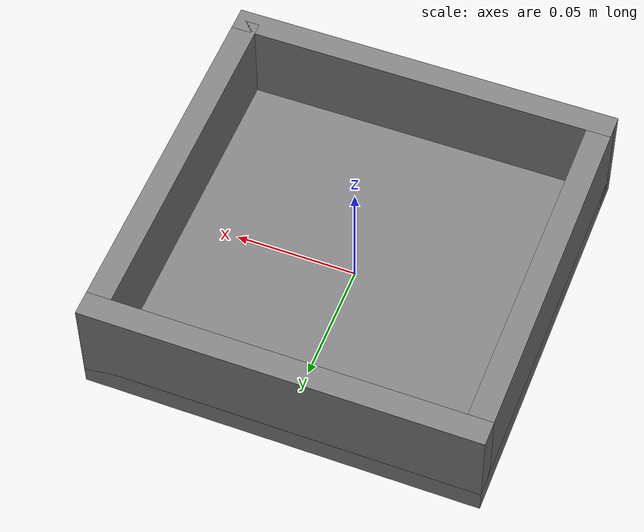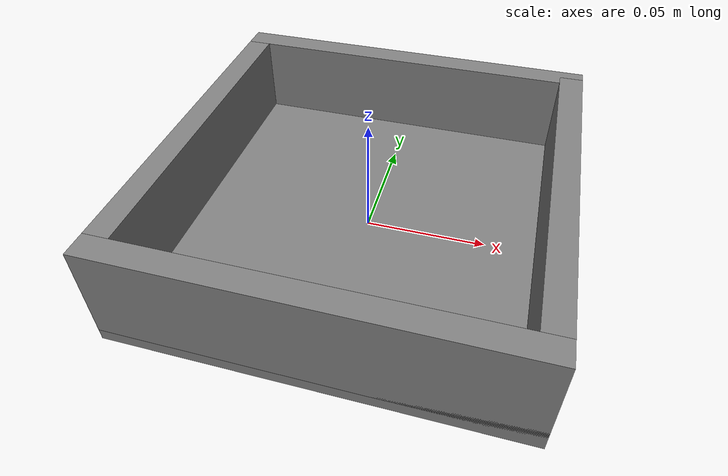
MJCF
<mujoco model="simple_basket">
  <asset>
    <material name="mat_basket" rgba="0.5 0.5 0.5 1" shininess="0.1" specular="0.1"/>
  </asset>
  <worldbody>
    <body>
     <body name="object">
      <!-- 篮子底座 -->
      <geom name="bottom" type="box" size="0.08 0.08 0.005" pos="0 0 0" material="mat_basket" group="1"/>
      <geom name="wall_1" type="box" size="0.08 0.005 0.02" pos="0 0.075 0.02" material="mat_basket" group="1"/>
      <geom name="wall_2" type="box" size="0.08 0.005 0.02" pos="0 -0.075 0.02" material="mat_basket" group="1"/>
      <geom name="wall_3" type="box" size="0.005 0.075 0.02" pos="0.075 0 0.02" material="mat_basket" group="1"/>
      <geom name="wall_4" type="box" size="0.005 0.075 0.02" pos="-0.075 0 0.02" material="mat_basket" group="1"/>

      <!-- 判定点：BDDL的 "In" 判定通常依赖这个 site -->
      <site name="bin_site" pos="0 0 0.01" size="0.01" rgba="0 0 0 0"/>
     </body>

    </body>
  </worldbody>
</mujoco>
